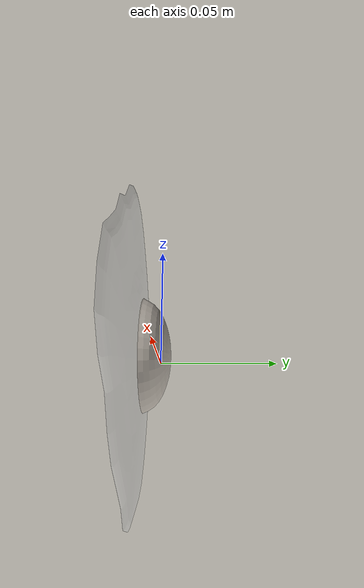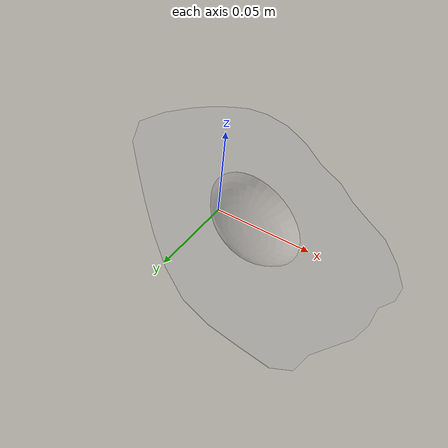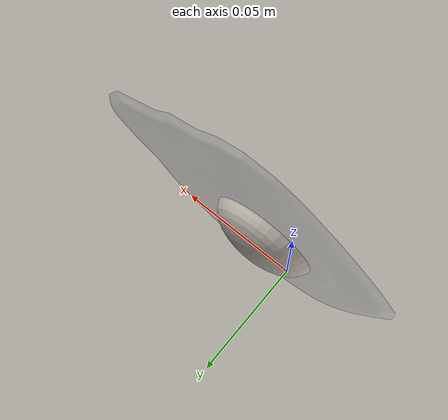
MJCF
<mujoco model="Egg_Cracked_10">
  <compiler autolimits="true" boundmass="0.01" angle="radian"/>
  <default>
    <default class="/">
      <default class="__VISUAL_MJT__">
        <geom contype="0" conaffinity="0" group="0"/>
      </default>
      <default class="__STRUCTURAL_MJT__">
        <geom contype="8" conaffinity="15" group="4" friction="0.90000000000000002 0.90000000000000002 0.001" solref="0.025000000000000001 1" solimp="0.998 0.998 0.001"/>
      </default>
      <default class="__DYNAMIC_MJT__">
        <geom contype="1" conaffinity="15" group="4" friction="0.90000000000000002 0.90000000000000002 0.001" solref="0.025000000000000001 1" solimp="0.998 0.998 0.001"/>
      </default>
    </default>
  </default>
  <asset>
    <texture name="Fried_Egg_White_Uncooked_Mat" type="2d" file="Fried_Egg_AlbedoTransparency.png"/>
    <material name="material_Fried_Egg_White_Uncooked_Mat" class="/" texture="Fried_Egg_White_Uncooked_Mat" specular="0.5" shininess="0.5" rgba="1 1 1 0.5"/>
    <texture name="Fried_Egg_Yolk_Mat" type="2d" file="Fried_Egg_AlbedoTransparency.png"/>
    <material name="material_Fried_Egg_Yolk_Mat" class="/" texture="Fried_Egg_Yolk_Mat" specular="0.5" shininess="0.5" rgba="1 1 1 1"/>
    <mesh name="Egg_Cracked_10_fried_egg_10_0" class="/" file="Egg_Cracked_10_fried_egg_10/Egg_Cracked_10_fried_egg_10_0.obj" scale="1 1 1"/>
    <mesh name="Egg_Cracked_10_fried_egg_10_1" class="/" file="Egg_Cracked_10_fried_egg_10/Egg_Cracked_10_fried_egg_10_1.obj" scale="1 1 1"/>
  </asset>
  <worldbody>
    <body name="Egg_Cracked_10">
      <joint name="Egg_Cracked_10_free" class="/" type="free" pos="0 0 0" axis="0 0 1" stiffness="0" range="0 0" armature="0" damping="0.10000000000000001" frictionloss="0"/>
      <body name="Egg_Cracked_10_fried_egg_10" pos="0.01439 -0.01023 0" quat="1 0 0 0">
        <geom name="Egg_Cracked_10_fried_egg_10_0" class="__VISUAL_MJT__" type="mesh" material="material_Fried_Egg_White_Uncooked_Mat" shellinertia="false" mesh="Egg_Cracked_10_fried_egg_10_0"/>
        <geom name="Egg_Cracked_10_fried_egg_10_1" class="__VISUAL_MJT__" type="mesh" material="material_Fried_Egg_Yolk_Mat" shellinertia="false" mesh="Egg_Cracked_10_fried_egg_10_1"/>
        <geom name="Egg_Cracked_10_PrimitiveCollider_0" class="__DYNAMIC_MJT__" type="box" size="0.074310719966888428 0.010231256484985352 0.069158107042312622" rgba="0 1 0 1" pos="0.014394938945770264 0.010231256484985352 0" quat="1 0 0 0"/>
      </body>
    </body>
  </worldbody>
</mujoco>
